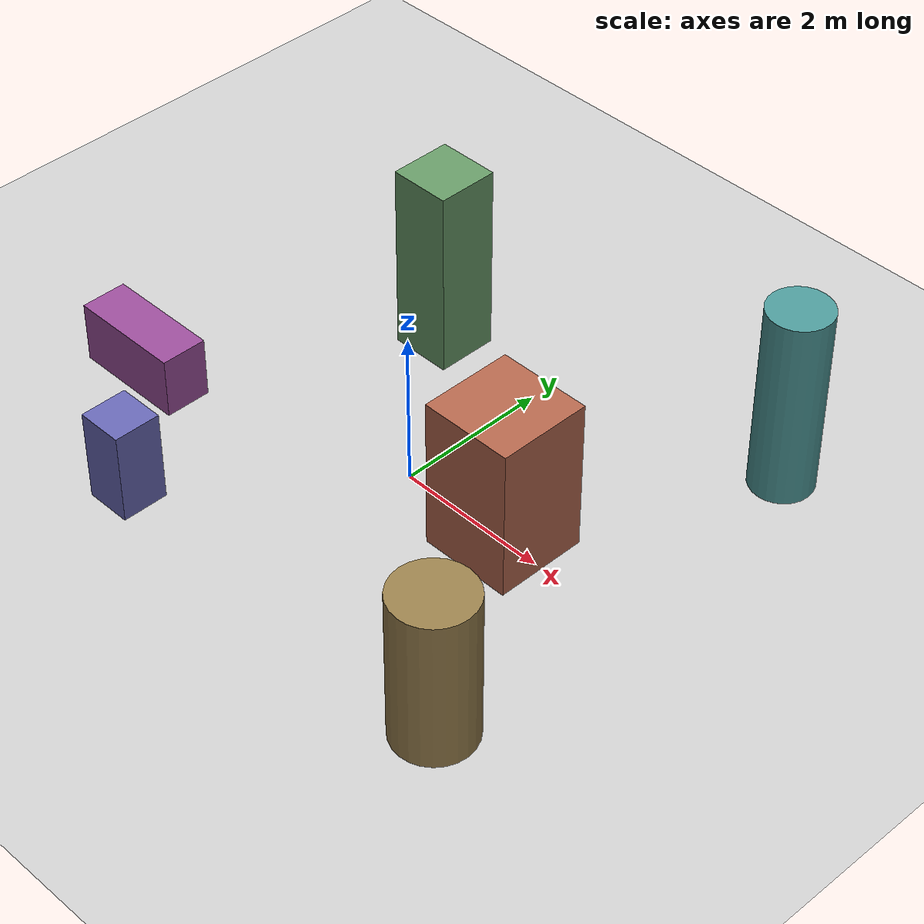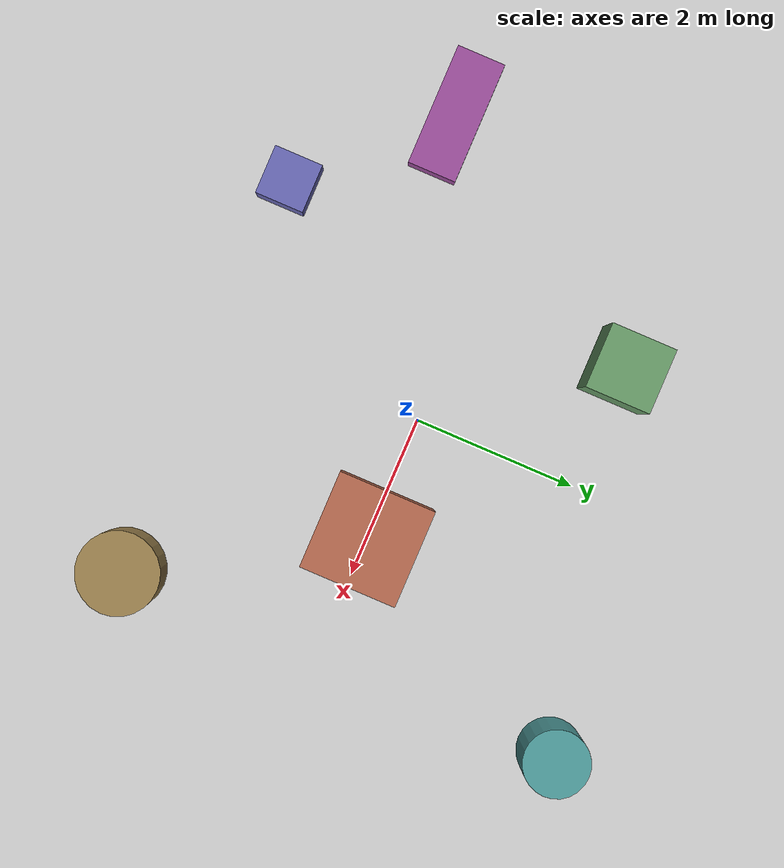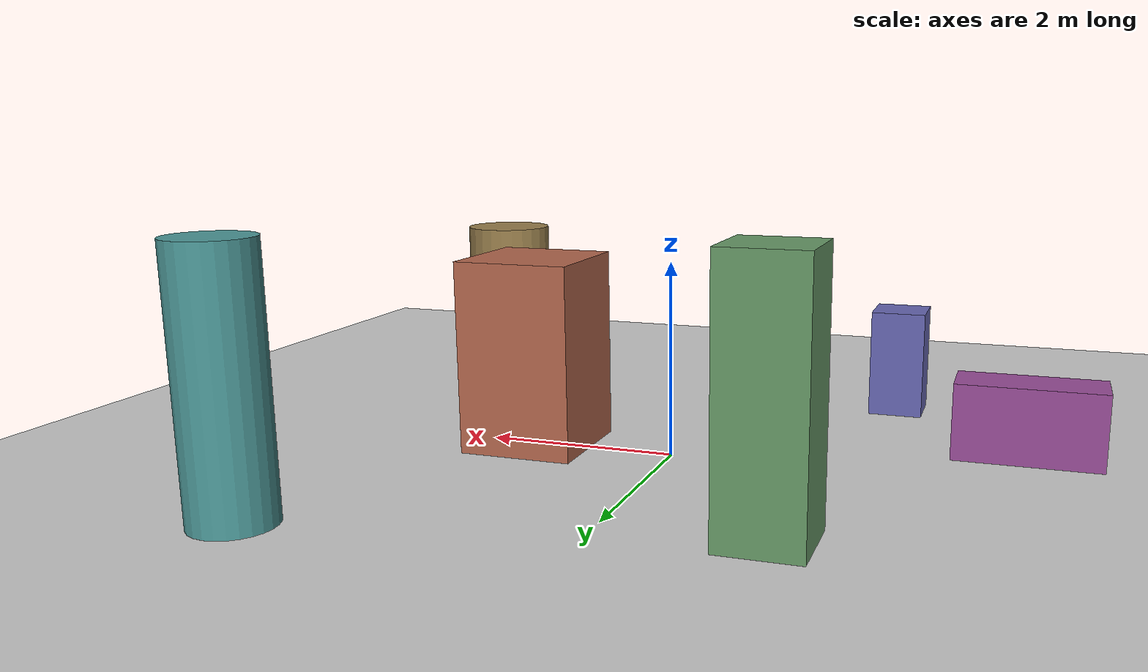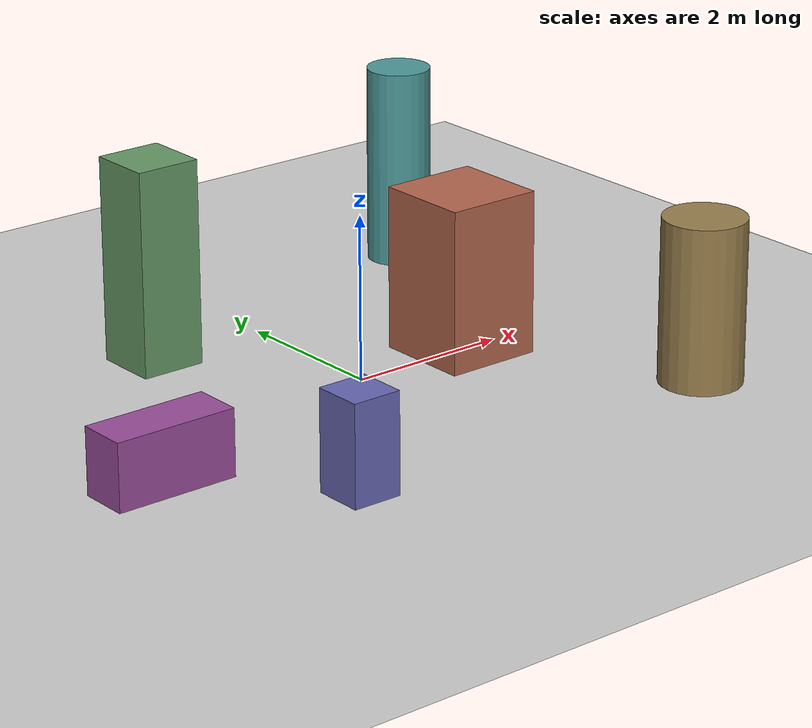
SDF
<sdf version="1.9">
 <world name="cyberzoo_obstacles">
  <physics type="ode">
   <max_step_size>0.001</max_step_size>
   <real_time_factor>1.0</real_time_factor>
   <real_time_update_rate>0</real_time_update_rate>
  </physics>
  <gravity>0 0 -9.8</gravity>
  <magnetic_field>6e-06 2.3e-05 -4.2e-05</magnetic_field>
  <atmosphere type="adiabatic"/>
  <scene>
   <grid>false</grid>
   <ambient>0.9 0.9 0.9 1</ambient>
   <background>0.7 0.7 0.7 1</background>
   <shadows>true</shadows>
  </scene>
  <light name="sunUTC" type="directional">
   <pose>0 0 500 0 0 0</pose>
   <intensity>1</intensity>
   <direction>0.001 0.625 -0.78</direction>
   <diffuse>0.904 0.904 0.904 1</diffuse>
   <specular>0.271 0.271 0.271 1</specular>
   <attenuation><range>2000</range><linear>0</linear><constant>1</constant><quadratic>0</quadratic></attenuation>
  </light>
  <spherical_coordinates>
   <surface_model>EARTH_WGS84</surface_model>
   <world_frame_orientation>ENU</world_frame_orientation>
   <latitude_deg>51.9906361</latitude_deg>
   <longitude_deg>4.3767874</longitude_deg>
   <elevation>45.110</elevation>
  </spherical_coordinates>
  <model name="ground_plane">
   <static>true</static>
   <link name="link">
    <collision name="collision">
     <geometry><plane><normal>0 0 1</normal><size>1 1</size></plane></geometry>
    </collision>
    <visual name="visual">
     <geometry><plane><normal>0 0 1</normal><size>500 500</size></plane></geometry>
     <material>
      <ambient>0.8 0.8 0.8 1</ambient>
      <diffuse>0.8 0.8 0.8 1</diffuse>
      <specular>0.8 0.8 0.8 1</specular>
     </material>
    </visual>
   </link>
  </model>
  <model name="obstacle_box_1">
   <static>true</static>
   <pose>1.5 0 1 0 0 0</pose>
   <link name="link">
    <collision name="collision"><geometry><box><size>1.2 1.2 2</size></box></geometry></collision>
    <visual name="visual">
     <geometry><box><size>1.2 1.2 2</size></box></geometry>
     <material><ambient>0.6 0.3 0.2 1</ambient><diffuse>0.7 0.4 0.3 1</diffuse></material>
    </visual>
   </link>
  </model>
  <model name="obstacle_box_2">
   <static>true</static>
   <pose>-1.5 2 1.25 0 0 0</pose>
   <link name="link">
    <collision name="collision"><geometry><box><size>0.8 0.8 2.5</size></box></geometry></collision>
    <visual name="visual">
     <geometry><box><size>0.8 0.8 2.5</size></box></geometry>
     <material><ambient>0.3 0.5 0.3 1</ambient><diffuse>0.4 0.6 0.4 1</diffuse></material>
    </visual>
   </link>
  </model>
  <model name="obstacle_box_3">
   <static>true</static>
   <pose>-2 -2.5 0.6 0 0 0</pose>
   <link name="link">
    <collision name="collision"><geometry><box><size>0.6 0.6 1.2</size></box></geometry></collision>
    <visual name="visual">
     <geometry><box><size>0.6 0.6 1.2</size></box></geometry>
     <material><ambient>0.3 0.3 0.6 1</ambient><diffuse>0.4 0.4 0.7 1</diffuse></material>
    </visual>
   </link>
  </model>
  <model name="obstacle_cyl_1">
   <static>true</static>
   <pose>3 -2.5 1 0 0 0</pose>
   <link name="link">
    <collision name="collision">
     <geometry><cylinder><radius>0.5</radius><length>2</length></cylinder></geometry>
    </collision>
    <visual name="visual">
     <geometry><cylinder><radius>0.5</radius><length>2</length></cylinder></geometry>
     <material><ambient>0.5 0.4 0.2 1</ambient><diffuse>0.6 0.5 0.3 1</diffuse></material>
    </visual>
   </link>
  </model>
  <model name="obstacle_box_4">
   <static>true</static>
   <pose>-3.5 -1 0.4 0 0 0</pose>
   <link name="link">
    <collision name="collision"><geometry><box><size>1.5 0.6 0.8</size></box></geometry></collision>
    <visual name="visual">
     <geometry><box><size>1.5 0.6 0.8</size></box></geometry>
     <material><ambient>0.5 0.2 0.5 1</ambient><diffuse>0.6 0.3 0.6 1</diffuse></material>
    </visual>
   </link>
  </model>
  <model name="obstacle_cyl_2">
   <static>true</static>
   <pose>3 3 1.25 0 0 0</pose>
   <link name="link">
    <collision name="collision">
     <geometry><cylinder><radius>0.4</radius><length>2.5</length></cylinder></geometry>
    </collision>
    <visual name="visual">
     <geometry><cylinder><radius>0.4</radius><length>2.5</length></cylinder></geometry>
     <material><ambient>0.2 0.5 0.5 1</ambient><diffuse>0.3 0.6 0.6 1</diffuse></material>
    </visual>
   </link>
  </model>
 </world>
</sdf>
